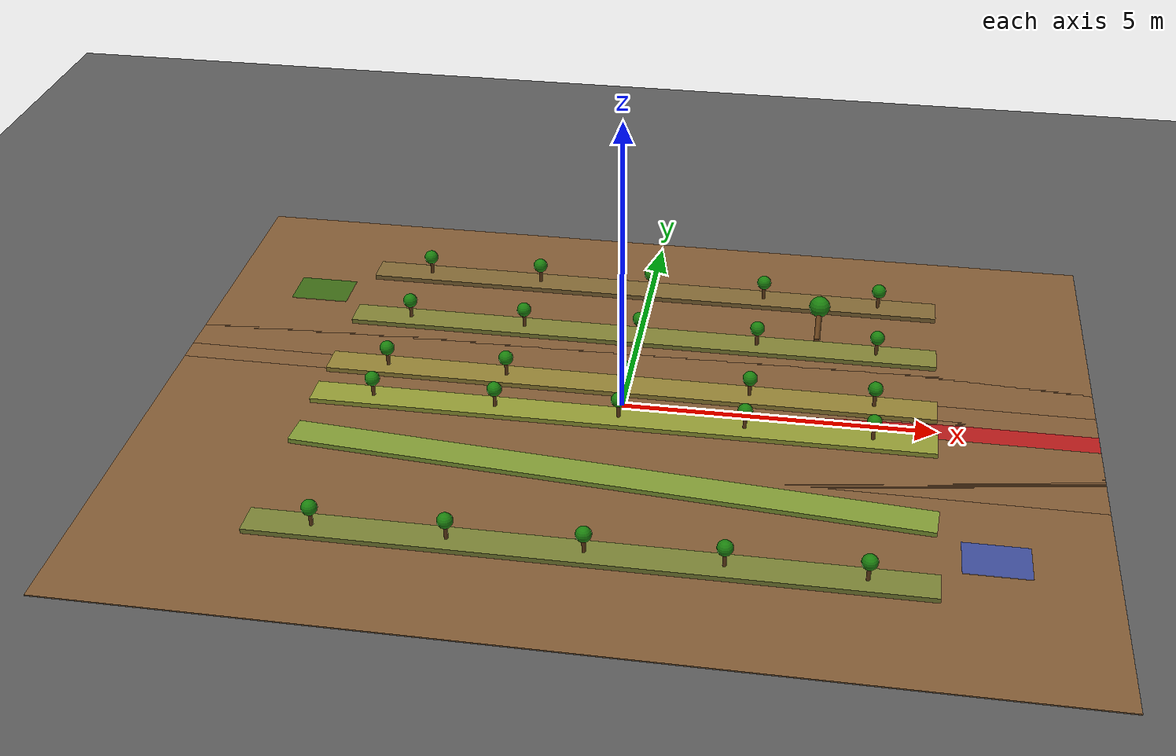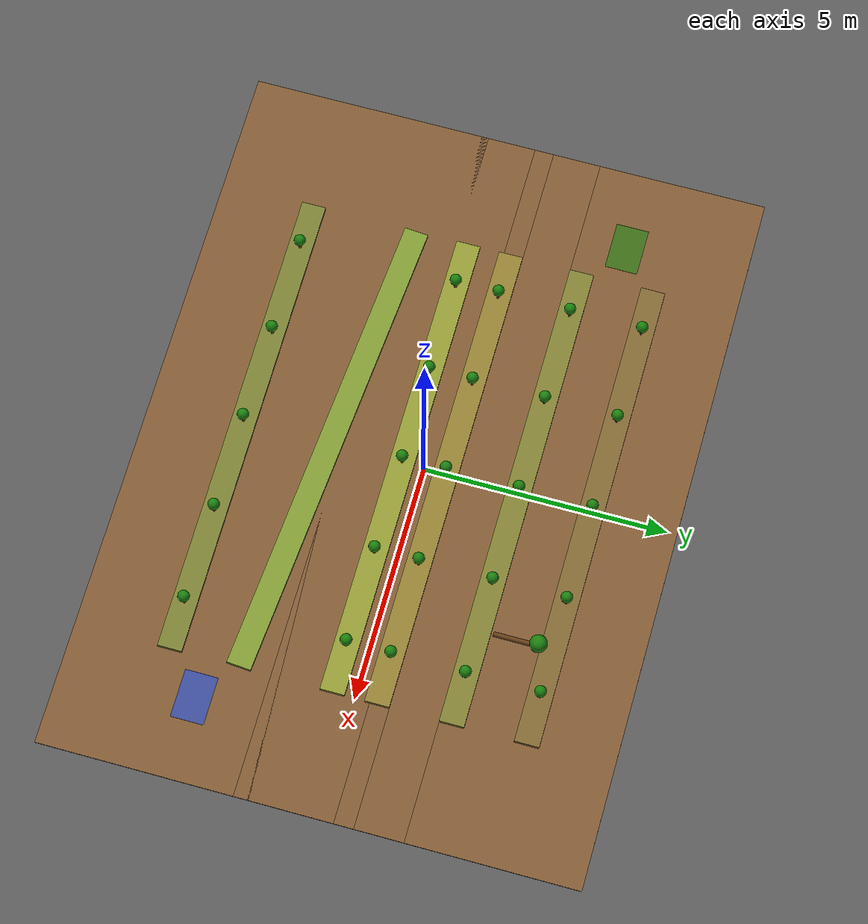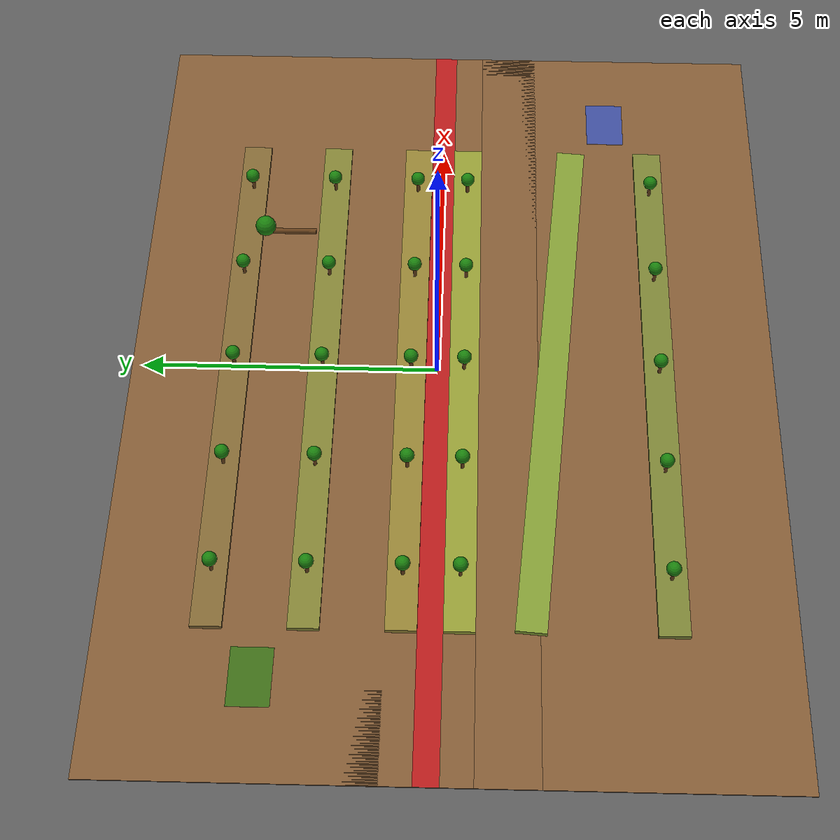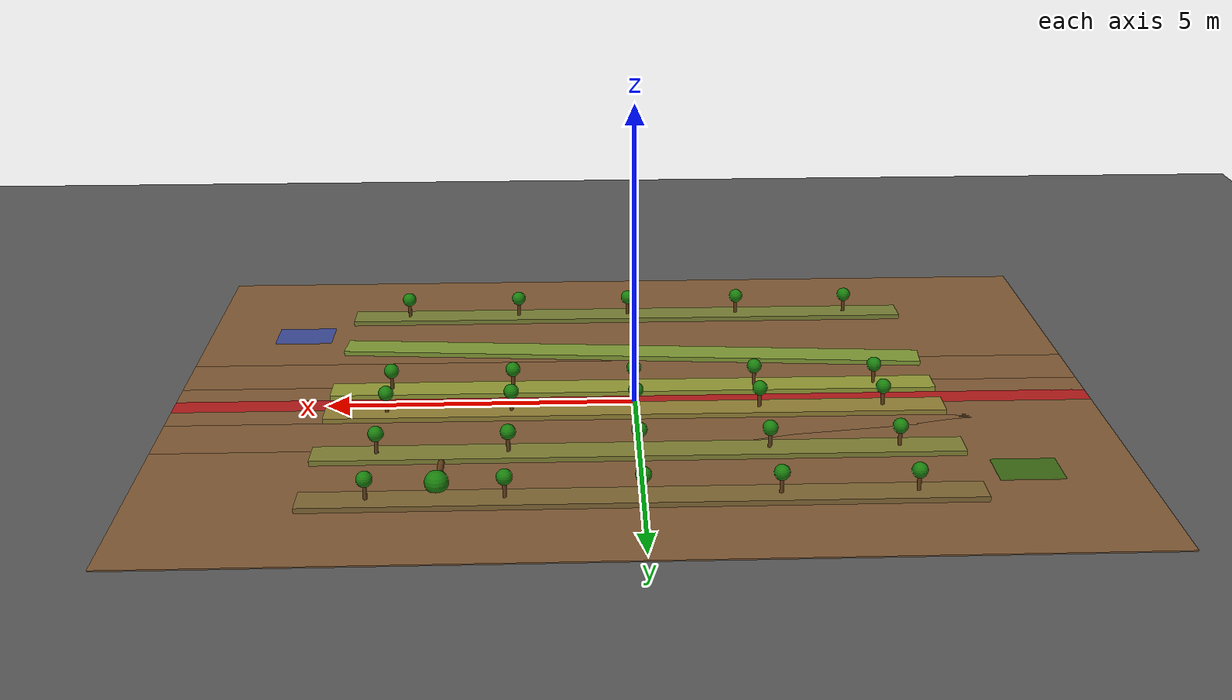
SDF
<?xml version="1.0" ?>
<sdf version="1.6">
<world name="five_lane_farm_world">

  <!-- Added by farm_bringup: lighting, ground and physics so the provided
       farm layout renders and simulates correctly in Gazebo Classic. -->
  <include><uri>model://sun</uri></include>

  <model name="ground_plane">
    <static>true</static>
    <link name="link">
      <collision name="collision">
        <geometry><plane><normal>0 0 1</normal><size>100 100</size></plane></geometry>
        <surface><friction><ode><mu>1.0</mu><mu2>1.0</mu2></ode></friction></surface>
      </collision>
      <visual name="visual">
        <geometry><plane><normal>0 0 1</normal><size>100 100</size></plane></geometry>
        <material>
          <ambient>0.3 0.3 0.3 1</ambient>
          <diffuse>0.35 0.35 0.35 1</diffuse>
        </material>
      </visual>
    </link>
  </model>

  <physics name="default_physics" type="ode">
    <max_step_size>0.004</max_step_size>
    <real_time_factor>1.0</real_time_factor>
    <real_time_update_rate>250</real_time_update_rate>
  </physics>

  <scene>
    <ambient>0.5 0.5 0.5 1</ambient>
    <background>0.7 0.8 0.95 1</background>
    <shadows>true</shadows>
  </scene>

  <!-- Exposes /gazebo/get_entity_state so the start (blue) and goal (green)
       marker poses can be READ AT RUNTIME instead of being hardcoded. -->
  <plugin name="gazebo_ros_state" filename="libgazebo_ros_state.so">
    <ros><namespace>/gazebo</namespace></ros>
    <update_rate>2.0</update_rate>
  </plugin>

  <!-- ============================ PLANT BEDS ============================ -->

  <model name="plant_bed_0">
    <static>true</static>
    <link name="bed_link">
      <pose>0 -3.75 0.05 0 0 0</pose>
      <visual name="bed_visual">
        <geometry><box><size>10.0 0.5 0.1</size></box></geometry>
        <material>
          <ambient>0.5 0.35 0.2 1</ambient>
          <diffuse>0.47 0.5 0.2 1</diffuse>
        </material>
      </visual>
      <collision name="bed_collision">
        <geometry><box><size>10.0 0.5 0.1</size></box></geometry>
      </collision>
    </link>
  </model>

  <model name="plant_bed_1">
    <static>true</static>
    <link name="bed_link">
      <pose>0 -1.95 0.05 0 0 -0.08</pose>
      <visual name="bed_visual">
        <geometry><box><size>10.0 0.5 0.1</size></box></geometry>
        <material>
          <ambient>0.5 0.35 0.2 1</ambient>
          <diffuse>0.5 0.6 0.2 1</diffuse>
        </material>
      </visual>
      <collision name="bed_collision">
        <geometry><box><size>10.0 0.5 0.1</size></box></geometry>
      </collision>
    </link>
  </model>

  <model name="plant_bed_2">
    <static>true</static>
    <link name="bed_link">
      <pose>0 -0.45 0.05 0 0 0</pose>
      <visual name="bed_visual">
        <geometry><box><size>10.0 0.5 0.1</size></box></geometry>
        <material>
          <ambient>0.5 0.35 0.2 1</ambient>
          <diffuse>0.57 0.6 0.2 1</diffuse>
        </material>
      </visual>
      <collision name="bed_collision">
        <geometry><box><size>10.0 0.5 0.1</size></box></geometry>
      </collision>
    </link>
  </model>

  <model name="plant_bed_3">
    <static>true</static>
    <link name="bed_link">
      <pose>0 0.45 0.05 0 0 0</pose>
      <visual name="bed_visual">
        <geometry><box><size>10.0 0.5 0.1</size></box></geometry>
        <material>
          <ambient>0.5 0.35 0.2 1</ambient>
          <diffuse>0.57 0.5 0.2 1</diffuse>
        </material>
      </visual>
      <collision name="bed_collision">
        <geometry><box><size>10.0 0.5 0.1</size></box></geometry>
      </collision>
    </link>
  </model>

  <model name="plant_bed_4">
    <static>true</static>
    <link name="bed_link">
      <pose>0 1.95 0.05 0 0 0</pose>
      <visual name="bed_visual">
        <geometry><box><size>10.0 0.5 0.1</size></box></geometry>
        <material>
          <ambient>0.5 0.35 0.2 1</ambient>
          <diffuse>0.5 0.5 0.2 1</diffuse>
        </material>
      </visual>
      <collision name="bed_collision">
        <geometry><box><size>10.0 0.5 0.1</size></box></geometry>
      </collision>
    </link>
  </model>

  <model name="plant_bed_5">
    <static>true</static>
    <link name="bed_link">
      <pose>0 3.45 0.05 0 0 0</pose>
      <visual name="bed_visual">
        <geometry><box><size>10.0 0.5 0.1</size></box></geometry>
        <material>
          <ambient>0.5 0.35 0.2 1</ambient>
          <diffuse>0.5 0.4 0.2 1</diffuse>
        </material>
      </visual>
      <collision name="bed_collision">
        <geometry><box><size>10.0 0.5 0.1</size></box></geometry>
      </collision>
    </link>
  </model>

  <model name="lane_1_uniform">
    <static>true</static>
    <link name="lane_link">
      <pose>0 -2.7 0.01 0 0 0</pose>
      <visual name="lane_visual">
        <geometry><box><size>15.0 6.0 0.02</size></box></geometry>
        <material>
          <ambient>0.5 0.35 0.2 1</ambient>
          <diffuse>0.5 0.35 0.2 1</diffuse>
        </material>
      </visual>
      <collision name="lane_collision">
        <geometry><box><size>10.0 1.0 0.02</size></box></geometry>
      </collision>
    </link>
  </model>

  <!-- reconstructed - not visible in source screenshots -->
  <model name="lane_2_uniform">
    <static>true</static>
    <link name="lane_link">
      <pose>0 -1.2 0.01 0 0 0</pose>
      <visual name="lane_visual">
        <geometry><box><size>15.0 1.0 0.02</size></box></geometry>
        <material>
          <ambient>0.5 0.35 0.2 1</ambient>
          <diffuse>0.5 0.35 0.2 1</diffuse>
        </material>
      </visual>
      <collision name="lane_collision">
        <geometry><box><size>10.0 1.0 0.02</size></box></geometry>
      </collision>
    </link>
  </model>

  <!-- NARROW lane (red). reconstructed - not visible in source screenshots -->
  <model name="lane_3_narrow">
    <static>true</static>
    <link name="lane_link">
      <pose>0 0.0 0.01 0 0 0</pose>
      <visual name="lane_visual">
        <geometry><box><size>15.0 0.4 0.02</size></box></geometry>
        <material>
          <ambient>0.7 0.1 0.1 1</ambient>
          <diffuse>0.7 0.1 0.1 1</diffuse>
        </material>
      </visual>
      <collision name="lane_collision">
        <geometry><box><size>10.0 0.4 0.02</size></box></geometry>
      </collision>
    </link>
  </model>

  <!-- reconstructed - not visible in source screenshots -->
  <model name="lane_4_uniform">
    <static>true</static>
    <link name="lane_link">
      <pose>0 1.2 0.01 0 0 0</pose>
      <visual name="lane_visual">
        <geometry><box><size>15.0 1.0 0.02</size></box></geometry>
        <material>
          <ambient>0.5 0.35 0.2 1</ambient>
          <diffuse>0.5 0.35 0.2 1</diffuse>
        </material>
      </visual>
      <collision name="lane_collision">
        <geometry><box><size>10.0 1.0 0.02</size></box></geometry>
      </collision>
    </link>
  </model>

  <model name="lane_5_uniform">
    <static>true</static>
    <link name="lane_link">
      <pose>0 2.7 0.01 0 0 0</pose>
      <visual name="lane_visual">
        <geometry><box><size>15.0 5.0 0.02</size></box></geometry>
        <material>
          <ambient>0.5 0.35 0.2 1</ambient>
          <diffuse>0.5 0.35 0.2 1</diffuse>
        </material>
      </visual>
      <collision name="lane_collision">
        <geometry><box><size>10.0 1.0 0.02</size></box></geometry>
      </collision>
    </link>
  </model>

  <model name="husky_footprint_start_reference">
    <static>true</static>
    <link name="footprint_link">
      <pose>5.8 -3.0 0.025 0 0 0</pose>
      <visual name="footprint_visual">
        <geometry><box><size>0.99 0.67 0.02</size></box></geometry>
        <material>
          <ambient>0.1 0.3 0.9 0.6</ambient>
          <diffuse>0.1 0.3 0.9 0.6</diffuse>
        </material>
        <transparency>0.4</transparency>
      </visual>
    </link>
  </model>

  <model name="husky_footprint_end_reference">
    <static>true</static>
    <link name="footprint_link">
      <pose>-5.8 2.7 0.025 0 0 0</pose>
      <visual name="footprint_visual">
        <geometry><box><size>0.99 0.67 0.02</size></box></geometry>
        <material>
          <ambient>0.1 0.5 0.05 1</ambient>
          <diffuse>0.1 0.5 0.05 1</diffuse>
        </material>
        <transparency>0.4</transparency>
      </visual>
    </link>
  </model>

  <model name="plant_bed_0_p0_stem">
    <static>true</static>
    <link name="stem_link">
      <pose>-4.0 -3.75 0.225 0 0 0</pose>
      <visual name="stem_visual">
        <geometry><cylinder><radius>0.03</radius><length>0.25</length></cylinder></geometry>
        <material>
          <ambient>0.4 0.25 0.1 1</ambient>
          <diffuse>0.4 0.25 0.1 1</diffuse>
        </material>
      </visual>
    </link>
  </model>

  <model name="plant_bed_0_p0_foliage">
    <static>true</static>
    <link name="foliage_link">
      <pose>-4.0 -3.75 0.42 0 0 0</pose>
      <visual name="foliage_visual">
        <geometry><sphere><radius>0.12</radius></sphere></geometry>
        <material>
          <ambient>0.1 0.5 0.05 1</ambient>
          <diffuse>0.1 0.5 0.05 1</diffuse>
        </material>
      </visual>
    </link>
  </model>

  <model name="plant_bed_0_p2_stem">
    <static>true</static>
    <link name="stem_link">
      <pose>-2.0 -3.75 0.225 0 0 0</pose>
      <visual name="stem_visual">
        <geometry><cylinder><radius>0.03</radius><length>0.25</length></cylinder></geometry>
        <material>
          <ambient>0.4 0.25 0.1 1</ambient>
          <diffuse>0.4 0.25 0.1 1</diffuse>
        </material>
      </visual>
    </link>
  </model>

  <model name="plant_bed_0_p2_foliage">
    <static>true</static>
    <link name="foliage_link">
      <pose>-2.0 -3.75 0.42 0 0 0</pose>
      <visual name="foliage_visual">
        <geometry><sphere><radius>0.12</radius></sphere></geometry>
        <material>
          <ambient>0.1 0.5 0.05 1</ambient>
          <diffuse>0.1 0.5 0.05 1</diffuse>
        </material>
      </visual>
    </link>
  </model>

  <model name="plant_bed_0_p4_stem">
    <static>true</static>
    <link name="stem_link">
      <pose>0.0 -3.75 0.225 0 0 0</pose>
      <visual name="stem_visual">
        <geometry><cylinder><radius>0.03</radius><length>0.25</length></cylinder></geometry>
        <material>
          <ambient>0.4 0.25 0.1 1</ambient>
          <diffuse>0.4 0.25 0.1 1</diffuse>
        </material>
      </visual>
    </link>
  </model>

  <model name="plant_bed_0_p4_foliage">
    <static>true</static>
    <link name="foliage_link">
      <pose>0.0 -3.75 0.42 0 0 0</pose>
      <visual name="foliage_visual">
        <geometry><sphere><radius>0.12</radius></sphere></geometry>
        <material>
          <ambient>0.1 0.5 0.05 1</ambient>
          <diffuse>0.1 0.5 0.05 1</diffuse>
        </material>
      </visual>
    </link>
  </model>

  <model name="plant_bed_0_p6_stem">
    <static>true</static>
    <link name="stem_link">
      <pose>2.0 -3.75 0.225 0 0 0</pose>
      <visual name="stem_visual">
        <geometry><cylinder><radius>0.03</radius><length>0.25</length></cylinder></geometry>
        <material>
          <ambient>0.4 0.25 0.1 1</ambient>
          <diffuse>0.4 0.25 0.1 1</diffuse>
        </material>
      </visual>
    </link>
  </model>

  <model name="plant_bed_0_p6_foliage">
    <static>true</static>
    <link name="foliage_link">
      <pose>2.0 -3.75 0.42 0 0 0</pose>
      <visual name="foliage_visual">
        <geometry><sphere><radius>0.12</radius></sphere></geometry>
        <material>
          <ambient>0.1 0.5 0.05 1</ambient>
          <diffuse>0.1 0.5 0.05 1</diffuse>
        </material>
      </visual>
    </link>
  </model>

  <model name="plant_bed_0_p8_stem">
    <static>true</static>
    <link name="stem_link">
      <pose>4.0 -3.75 0.225 0 0 0</pose>
      <visual name="stem_visual">
        <geometry><cylinder><radius>0.03</radius><length>0.25</length></cylinder></geometry>
        <material>
          <ambient>0.4 0.25 0.1 1</ambient>
          <diffuse>0.4 0.25 0.1 1</diffuse>
        </material>
      </visual>
    </link>
  </model>

  <model name="plant_bed_0_p8_foliage">
    <static>true</static>
    <link name="foliage_link">
      <pose>4.0 -3.75 0.42 0 0 0</pose>
      <visual name="foliage_visual">
        <geometry><sphere><radius>0.12</radius></sphere></geometry>
        <material>
          <ambient>0.1 0.5 0.05 1</ambient>
          <diffuse>0.1 0.5 0.05 1</diffuse>
        </material>
      </visual>
    </link>
  </model>

  <model name="plant_bed_2_p0_stem">
    <static>true</static>
    <link name="stem_link">
      <pose>-4.0 -0.45 0.225 0 0 0</pose>
      <visual name="stem_visual">
        <geometry><cylinder><radius>0.03</radius><length>0.25</length></cylinder></geometry>
        <material>
          <ambient>0.4 0.25 0.1 1</ambient>
          <diffuse>0.4 0.25 0.1 1</diffuse>
        </material>
      </visual>
    </link>
  </model>

  <model name="plant_bed_2_p0_foliage">
    <static>true</static>
    <link name="foliage_link">
      <pose>-4.0 -0.45 0.42 0 0 0</pose>
      <visual name="foliage_visual">
        <geometry><sphere><radius>0.12</radius></sphere></geometry>
        <material>
          <ambient>0.1 0.5 0.05 1</ambient>
          <diffuse>0.1 0.5 0.05 1</diffuse>
        </material>
      </visual>
    </link>
  </model>

  <model name="plant_bed_2_p2_stem">
    <static>true</static>
    <link name="stem_link">
      <pose>-2.0 -0.45 0.225 0 0 0</pose>
      <visual name="stem_visual">
        <geometry><cylinder><radius>0.03</radius><length>0.25</length></cylinder></geometry>
        <material>
          <ambient>0.4 0.25 0.1 1</ambient>
          <diffuse>0.4 0.25 0.1 1</diffuse>
        </material>
      </visual>
    </link>
  </model>

  <model name="plant_bed_2_p2_foliage">
    <static>true</static>
    <link name="foliage_link">
      <pose>-2.0 -0.45 0.42 0 0 0</pose>
      <visual name="foliage_visual">
        <geometry><sphere><radius>0.12</radius></sphere></geometry>
        <material>
          <ambient>0.1 0.5 0.05 1</ambient>
          <diffuse>0.1 0.5 0.05 1</diffuse>
        </material>
      </visual>
    </link>
  </model>

  <model name="plant_bed_2_p4_stem">
    <static>true</static>
    <link name="stem_link">
      <pose>0.0 -0.45 0.225 0 0 0</pose>
      <visual name="stem_visual">
        <geometry><cylinder><radius>0.03</radius><length>0.25</length></cylinder></geometry>
        <material>
          <ambient>0.4 0.25 0.1 1</ambient>
          <diffuse>0.4 0.25 0.1 1</diffuse>
        </material>
      </visual>
    </link>
  </model>

  <model name="plant_bed_2_p4_foliage">
    <static>true</static>
    <link name="foliage_link">
      <pose>0.0 -0.45 0.42 0 0 0</pose>
      <visual name="foliage_visual">
        <geometry><sphere><radius>0.12</radius></sphere></geometry>
        <material>
          <ambient>0.1 0.5 0.05 1</ambient>
          <diffuse>0.1 0.5 0.05 1</diffuse>
        </material>
      </visual>
    </link>
  </model>

  <model name="plant_bed_2_p6_stem">
    <static>true</static>
    <link name="stem_link">
      <pose>2.0 -0.45 0.225 0 0 0</pose>
      <visual name="stem_visual">
        <geometry><cylinder><radius>0.03</radius><length>0.25</length></cylinder></geometry>
        <material>
          <ambient>0.4 0.25 0.1 1</ambient>
          <diffuse>0.4 0.25 0.1 1</diffuse>
        </material>
      </visual>
    </link>
  </model>

  <model name="plant_bed_2_p6_foliage">
    <static>true</static>
    <link name="foliage_link">
      <pose>2.0 -0.45 0.42 0 0 0</pose>
      <visual name="foliage_visual">
        <geometry><sphere><radius>0.12</radius></sphere></geometry>
        <material>
          <ambient>0.1 0.5 0.05 1</ambient>
          <diffuse>0.1 0.5 0.05 1</diffuse>
        </material>
      </visual>
    </link>
  </model>

  <model name="plant_bed_2_p8_stem">
    <static>true</static>
    <link name="stem_link">
      <pose>4.0 -0.45 0.225 0 0 0</pose>
      <visual name="stem_visual">
        <geometry><cylinder><radius>0.03</radius><length>0.25</length></cylinder></geometry>
        <material>
          <ambient>0.4 0.25 0.1 1</ambient>
          <diffuse>0.4 0.25 0.1 1</diffuse>
        </material>
      </visual>
    </link>
  </model>

  <model name="plant_bed_2_p8_foliage">
    <static>true</static>
    <link name="foliage_link">
      <pose>4.0 -0.45 0.42 0 0 0</pose>
      <visual name="foliage_visual">
        <geometry><sphere><radius>0.12</radius></sphere></geometry>
        <material>
          <ambient>0.1 0.5 0.05 1</ambient>
          <diffuse>0.1 0.5 0.05 1</diffuse>
        </material>
      </visual>
    </link>
  </model>

  <model name="plant_bed_3_p0_stem">
    <static>true</static>
    <link name="stem_link">
      <pose>-4.0 0.45 0.225 0 0 0</pose>
      <visual name="stem_visual">
        <geometry><cylinder><radius>0.03</radius><length>0.25</length></cylinder></geometry>
        <material>
          <ambient>0.4 0.25 0.1 1</ambient>
          <diffuse>0.4 0.25 0.1 1</diffuse>
        </material>
      </visual>
    </link>
  </model>

  <model name="plant_bed_3_p0_foliage">
    <static>true</static>
    <link name="foliage_link">
      <pose>-4.0 0.45 0.42 0 0 0</pose>
      <visual name="foliage_visual">
        <geometry><sphere><radius>0.12</radius></sphere></geometry>
        <material>
          <ambient>0.1 0.5 0.05 1</ambient>
          <diffuse>0.1 0.5 0.05 1</diffuse>
        </material>
      </visual>
    </link>
  </model>

  <model name="plant_bed_3_p2_stem">
    <static>true</static>
    <link name="stem_link">
      <pose>-2.0 0.45 0.225 0 0 0</pose>
      <visual name="stem_visual">
        <geometry><cylinder><radius>0.03</radius><length>0.25</length></cylinder></geometry>
        <material>
          <ambient>0.4 0.25 0.1 1</ambient>
          <diffuse>0.4 0.25 0.1 1</diffuse>
        </material>
      </visual>
    </link>
  </model>

  <model name="plant_bed_3_p2_foliage">
    <static>true</static>
    <link name="foliage_link">
      <pose>-2.0 0.45 0.42 0 0 0</pose>
      <visual name="foliage_visual">
        <geometry><sphere><radius>0.12</radius></sphere></geometry>
        <material>
          <ambient>0.1 0.5 0.05 1</ambient>
          <diffuse>0.1 0.5 0.05 1</diffuse>
        </material>
      </visual>
    </link>
  </model>

  <model name="plant_bed_3_p4_stem">
    <static>true</static>
    <link name="stem_link">
      <pose>0.0 0.45 0.225 0 0 0</pose>
      <visual name="stem_visual">
        <geometry><cylinder><radius>0.03</radius><length>0.25</length></cylinder></geometry>
        <material>
          <ambient>0.4 0.25 0.1 1</ambient>
          <diffuse>0.4 0.25 0.1 1</diffuse>
        </material>
      </visual>
    </link>
  </model>

  <model name="plant_bed_3_p4_foliage">
    <static>true</static>
    <link name="foliage_link">
      <pose>0.0 0.45 0.42 0 0 0</pose>
      <visual name="foliage_visual">
        <geometry><sphere><radius>0.12</radius></sphere></geometry>
        <material>
          <ambient>0.1 0.5 0.05 1</ambient>
          <diffuse>0.1 0.5 0.05 1</diffuse>
        </material>
      </visual>
    </link>
  </model>

  <model name="plant_bed_3_p6_stem">
    <static>true</static>
    <link name="stem_link">
      <pose>2.0 0.45 0.225 0 0 0</pose>
      <visual name="stem_visual">
        <geometry><cylinder><radius>0.03</radius><length>0.25</length></cylinder></geometry>
        <material>
          <ambient>0.4 0.25 0.1 1</ambient>
          <diffuse>0.4 0.25 0.1 1</diffuse>
        </material>
      </visual>
    </link>
  </model>

  <model name="plant_bed_3_p6_foliage">
    <static>true</static>
    <link name="foliage_link">
      <pose>2.0 0.45 0.42 0 0 0</pose>
      <visual name="foliage_visual">
        <geometry><sphere><radius>0.12</radius></sphere></geometry>
        <material>
          <ambient>0.1 0.5 0.05 1</ambient>
          <diffuse>0.1 0.5 0.05 1</diffuse>
        </material>
      </visual>
    </link>
  </model>

  <model name="plant_bed_3_p8_stem">
    <static>true</static>
    <link name="stem_link">
      <pose>4.0 0.45 0.225 0 0 0</pose>
      <visual name="stem_visual">
        <geometry><cylinder><radius>0.03</radius><length>0.25</length></cylinder></geometry>
        <material>
          <ambient>0.4 0.25 0.1 1</ambient>
          <diffuse>0.4 0.25 0.1 1</diffuse>
        </material>
      </visual>
    </link>
  </model>

  <model name="plant_bed_3_p8_foliage">
    <static>true</static>
    <link name="foliage_link">
      <pose>4.0 0.45 0.42 0 0 0</pose>
      <visual name="foliage_visual">
        <geometry><sphere><radius>0.12</radius></sphere></geometry>
        <material>
          <ambient>0.1 0.5 0.05 1</ambient>
          <diffuse>0.1 0.5 0.05 1</diffuse>
        </material>
      </visual>
    </link>
  </model>

  <model name="plant_bed_4_p0_stem">
    <static>true</static>
    <link name="stem_link">
      <pose>-4.0 1.95 0.225 0 0 0</pose>
      <visual name="stem_visual">
        <geometry><cylinder><radius>0.03</radius><length>0.25</length></cylinder></geometry>
        <material>
          <ambient>0.4 0.25 0.1 1</ambient>
          <diffuse>0.4 0.25 0.1 1</diffuse>
        </material>
      </visual>
    </link>
  </model>

  <model name="plant_bed_4_p0_foliage">
    <static>true</static>
    <link name="foliage_link">
      <pose>-4.0 1.95 0.42 0 0 0</pose>
      <visual name="foliage_visual">
        <geometry><sphere><radius>0.12</radius></sphere></geometry>
        <material>
          <ambient>0.1 0.5 0.05 1</ambient>
          <diffuse>0.1 0.5 0.05 1</diffuse>
        </material>
      </visual>
    </link>
  </model>

  <model name="plant_bed_4_p2_stem">
    <static>true</static>
    <link name="stem_link">
      <pose>-2.0 1.95 0.225 0 0 0</pose>
      <visual name="stem_visual">
        <geometry><cylinder><radius>0.03</radius><length>0.25</length></cylinder></geometry>
        <material>
          <ambient>0.4 0.25 0.1 1</ambient>
          <diffuse>0.4 0.25 0.1 1</diffuse>
        </material>
      </visual>
    </link>
  </model>

  <model name="plant_bed_4_p2_foliage">
    <static>true</static>
    <link name="foliage_link">
      <pose>-2.0 1.95 0.42 0 0 0</pose>
      <visual name="foliage_visual">
        <geometry><sphere><radius>0.12</radius></sphere></geometry>
        <material>
          <ambient>0.1 0.5 0.05 1</ambient>
          <diffuse>0.1 0.5 0.05 1</diffuse>
        </material>
      </visual>
    </link>
  </model>

  <model name="plant_bed_4_p4_stem">
    <static>true</static>
    <link name="stem_link">
      <pose>0.0 1.95 0.225 0 0 0</pose>
      <visual name="stem_visual">
        <geometry><cylinder><radius>0.03</radius><length>0.25</length></cylinder></geometry>
        <material>
          <ambient>0.4 0.25 0.1 1</ambient>
          <diffuse>0.4 0.25 0.1 1</diffuse>
        </material>
      </visual>
    </link>
  </model>

  <model name="plant_bed_4_p4_foliage">
    <static>true</static>
    <link name="foliage_link">
      <pose>0.0 1.95 0.42 0 0 0</pose>
      <visual name="foliage_visual">
        <geometry><sphere><radius>0.12</radius></sphere></geometry>
        <material>
          <ambient>0.1 0.5 0.05 1</ambient>
          <diffuse>0.1 0.5 0.05 1</diffuse>
        </material>
      </visual>
    </link>
  </model>

  <model name="plant_bed_4_p6_stem">
    <static>true</static>
    <link name="stem_link">
      <pose>2.0 1.95 0.225 0 0 0</pose>
      <visual name="stem_visual">
        <geometry><cylinder><radius>0.03</radius><length>0.25</length></cylinder></geometry>
        <material>
          <ambient>0.4 0.25 0.1 1</ambient>
          <diffuse>0.4 0.25 0.1 1</diffuse>
        </material>
      </visual>
    </link>
  </model>

  <model name="plant_bed_4_p6_foliage">
    <static>true</static>
    <link name="foliage_link">
      <pose>2.0 1.95 0.42 0 0 0</pose>
      <visual name="foliage_visual">
        <geometry><sphere><radius>0.12</radius></sphere></geometry>
        <material>
          <ambient>0.1 0.5 0.05 1</ambient>
          <diffuse>0.1 0.5 0.05 1</diffuse>
        </material>
      </visual>
    </link>
  </model>

  <model name="plant_bed_4_p8_stem">
    <static>true</static>
    <link name="stem_link">
      <pose>4.0 1.95 0.225 0 0 0</pose>
      <visual name="stem_visual">
        <geometry><cylinder><radius>0.03</radius><length>0.25</length></cylinder></geometry>
        <material>
          <ambient>0.4 0.25 0.1 1</ambient>
          <diffuse>0.4 0.25 0.1 1</diffuse>
        </material>
      </visual>
    </link>
  </model>

  <model name="plant_bed_4_p8_foliage">
    <static>true</static>
    <link name="foliage_link">
      <pose>4.0 1.95 0.42 0 0 0</pose>
      <visual name="foliage_visual">
        <geometry><sphere><radius>0.12</radius></sphere></geometry>
        <material>
          <ambient>0.1 0.5 0.05 1</ambient>
          <diffuse>0.1 0.5 0.05 1</diffuse>
        </material>
      </visual>
    </link>
  </model>

  <model name="plant_bed_5_p0_stem">
    <static>true</static>
    <link name="stem_link">
      <pose>-4.0 3.45 0.225 0 0 0</pose>
      <visual name="stem_visual">
        <geometry><cylinder><radius>0.03</radius><length>0.25</length></cylinder></geometry>
        <material>
          <ambient>0.4 0.25 0.1 1</ambient>
          <diffuse>0.4 0.25 0.1 1</diffuse>
        </material>
      </visual>
    </link>
  </model>

  <model name="plant_bed_5_p0_foliage">
    <static>true</static>
    <link name="foliage_link">
      <pose>-4.0 3.45 0.42 0 0 0</pose>
      <visual name="foliage_visual">
        <geometry><sphere><radius>0.12</radius></sphere></geometry>
        <material>
          <ambient>0.1 0.5 0.05 1</ambient>
          <diffuse>0.1 0.5 0.05 1</diffuse>
        </material>
      </visual>
    </link>
  </model>

  <model name="plant_bed_5_p2_stem">
    <static>true</static>
    <link name="stem_link">
      <pose>-2.0 3.45 0.225 0 0 0</pose>
      <visual name="stem_visual">
        <geometry><cylinder><radius>0.03</radius><length>0.25</length></cylinder></geometry>
        <material>
          <ambient>0.4 0.25 0.1 1</ambient>
          <diffuse>0.4 0.25 0.1 1</diffuse>
        </material>
      </visual>
    </link>
  </model>

  <model name="plant_bed_5_p2_foliage">
    <static>true</static>
    <link name="foliage_link">
      <pose>-2.0 3.45 0.42 0 0 0</pose>
      <visual name="foliage_visual">
        <geometry><sphere><radius>0.12</radius></sphere></geometry>
        <material>
          <ambient>0.1 0.5 0.05 1</ambient>
          <diffuse>0.1 0.5 0.05 1</diffuse>
        </material>
      </visual>
    </link>
  </model>

  <model name="plant_bed_5_p4_stem">
    <static>true</static>
    <link name="stem_link">
      <pose>0.0 3.45 0.225 0 0 0</pose>
      <visual name="stem_visual">
        <geometry><cylinder><radius>0.03</radius><length>0.25</length></cylinder></geometry>
        <material>
          <ambient>0.4 0.25 0.1 1</ambient>
          <diffuse>0.4 0.25 0.1 1</diffuse>
        </material>
      </visual>
    </link>
  </model>

  <model name="plant_bed_5_p4_foliage">
    <static>true</static>
    <link name="foliage_link">
      <pose>0.0 3.45 0.42 0 0 0</pose>
      <visual name="foliage_visual">
        <geometry><sphere><radius>0.12</radius></sphere></geometry>
        <material>
          <ambient>0.1 0.5 0.05 1</ambient>
          <diffuse>0.1 0.5 0.05 1</diffuse>
        </material>
      </visual>
    </link>
  </model>

  <model name="plant_bed_5_p6_stem">
    <static>true</static>
    <link name="stem_link">
      <pose>2.0 3.45 0.225 0 0 0</pose>
      <visual name="stem_visual">
        <geometry><cylinder><radius>0.03</radius><length>0.25</length></cylinder></geometry>
        <material>
          <ambient>0.4 0.25 0.1 1</ambient>
          <diffuse>0.4 0.25 0.1 1</diffuse>
        </material>
      </visual>
    </link>
  </model>

  <model name="plant_bed_5_p6_foliage">
    <static>true</static>
    <link name="foliage_link">
      <pose>2.0 3.45 0.42 0 0 0</pose>
      <visual name="foliage_visual">
        <geometry><sphere><radius>0.12</radius></sphere></geometry>
        <material>
          <ambient>0.1 0.5 0.05 1</ambient>
          <diffuse>0.1 0.5 0.05 1</diffuse>
        </material>
      </visual>
    </link>
  </model>

  <model name="plant_bed_5_p8_stem">
    <static>true</static>
    <link name="stem_link">
      <pose>4.0 3.45 0.225 0 0 0</pose>
      <visual name="stem_visual">
        <geometry><cylinder><radius>0.03</radius><length>0.25</length></cylinder></geometry>
        <material>
          <ambient>0.4 0.25 0.1 1</ambient>
          <diffuse>0.4 0.25 0.1 1</diffuse>
        </material>
      </visual>
    </link>
  </model>

  <model name="plant_bed_5_p8_foliage">
    <static>true</static>
    <link name="foliage_link">
      <pose>4.0 3.45 0.42 0 0 0</pose>
      <visual name="foliage_visual">
        <geometry><sphere><radius>0.12</radius></sphere></geometry>
        <material>
          <ambient>0.1 0.5 0.05 1</ambient>
          <diffuse>0.1 0.5 0.05 1</diffuse>
        </material>
      </visual>
    </link>
  </model>

  <model name="fallen_plant_lane5">
    <static>true</static>
    <link name="fallen_link">

      <!-- toppled stem, lying across the lane -->
      <pose>3.0 2.7 0.07 1.5708 0 0</pose>
      <visual name="fallen_stem_visual">
        <geometry><cylinder><radius>0.05</radius><length>0.9</length></cylinder></geometry>
        <material>
          <ambient>0.4 0.25 0.1 1</ambient>
          <diffuse>0.4 0.25 0.1 1</diffuse>
        </material>
      </visual>
      <collision name="fallen_stem_collision">
        <geometry><cylinder><radius>0.05</radius><length>0.9</length></cylinder></geometry>
      </collision>
    </link>

    <!-- foliage clump at one end of the fallen stem -->
    <link name="fallen_foliage_link">
      <pose>3.0 3.15 0.20 0 0 0</pose>
      <visual name="fallen_foliage_visual">
        <geometry><sphere><radius>0.18</radius></sphere></geometry>
        <material>
          <ambient>0.1 0.5 0.05 1</ambient>
          <diffuse>0.1 0.5 0.05 1</diffuse>
        </material>
      </visual>
      <collision name="fallen_foliage_collision">
        <geometry><sphere><radius>0.18</radius></sphere></geometry>
      </collision>
    </link>
  </model>

</world>
</sdf>
